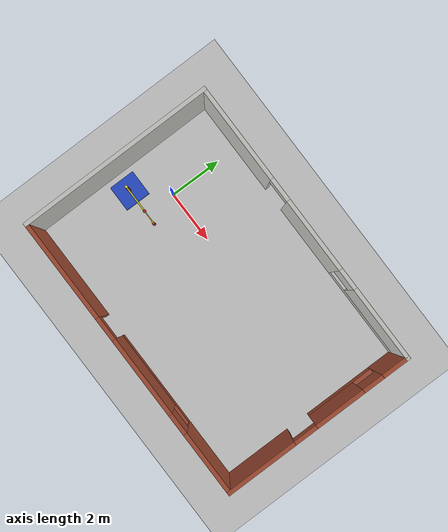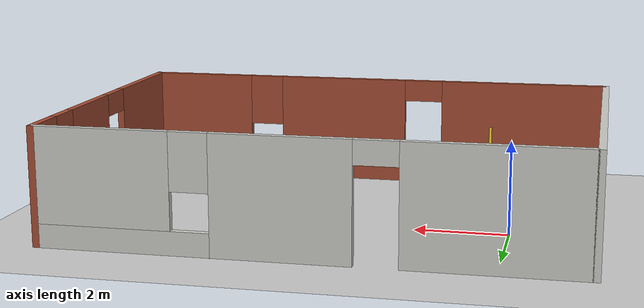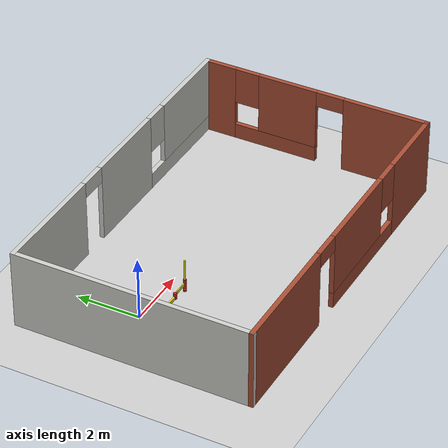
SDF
<sdf version="1.7">
 <world name="default">
  <light name="sun" type="directional">
   <pose>0 0 10 0 -0 0</pose>
   <diffuse>0.8 0.8 0.8 1</diffuse>
   <specular>0.2 0.2 0.2 1</specular>
   <attenuation>
    <range>1000</range>
    <constant>0.9</constant>
    <linear>0.01</linear>
    <quadratic>0.001</quadratic>
   </attenuation>
   <direction>-0.5 0.1 -0.9</direction>
   <spot><inner_angle>0</inner_angle><outer_angle>0</outer_angle><falloff>0</falloff></spot>
  </light>
  <model name="ground_plane">
   <static>1</static>
   <link name="link">
    <collision name="collision">
     <geometry><plane><normal>0 0 1</normal><size>100 100</size></plane></geometry>
     <surface>
      <contact><collide_bitmask>65535</collide_bitmask></contact>
      <friction><ode><mu>100</mu><mu2>50</mu2></ode></friction>
     </surface>
    </collision>
    <visual name="visual">
     <cast_shadows>0</cast_shadows>
     <geometry><plane><normal>0 0 1</normal><size>100 100</size></plane></geometry>
     <material>
      <script><uri>file://media/materials/scripts/gazebo.material</uri><name>Gazebo/Grey</name></script>
     </material>
    </visual>
   </link>
  </model>
  <gravity>0 0 -9.8</gravity>
  <magnetic_field>6e-06 2.3e-05 -4.2e-05</magnetic_field>
  <atmosphere type="adiabatic"/>
  <physics type="ode">
   <max_step_size>0.001</max_step_size>
   <real_time_factor>1</real_time_factor>
   <real_time_update_rate>1000</real_time_update_rate>
  </physics>
  <scene><ambient>0.4 0.4 0.4 1</ambient><background>0.7 0.7 0.7 1</background><shadows>1</shadows></scene>
  <audio><device>default</device></audio>
  <spherical_coordinates>
   <surface_model>EARTH_WGS84</surface_model>
   <latitude_deg>0</latitude_deg>
   <longitude_deg>0</longitude_deg>
   <elevation>0</elevation>
   <heading_deg>0</heading_deg>
  </spherical_coordinates>
  <model name="Side_wall_test">
   <pose>3.70494 -0.850149 0 0 -0 0</pose>
   <link name="Wall_0">
    <collision name="Wall_0_Collision">
     <geometry><box><size>7.5 0.15 2.5</size></box></geometry>
     <pose>0 0 1.25 0 -0 0</pose>
    </collision>
    <visual name="Wall_0_Visual">
     <pose>0 0 1.25 0 -0 0</pose>
     <geometry><box><size>7.5 0.15 2.5</size></box></geometry>
     <material>
      <script><uri>file://media/materials/scripts/gazebo.material</uri><name>Gazebo/CeilingTiled</name></script>
      <ambient>1 1 1 1</ambient>
     </material>
     <meta><layer>0</layer></meta>
    </visual>
    <pose>-5.55 -0 0 0 -0 1.5708</pose>
   </link>
   <link name="Wall_3">
    <pose>0 3.675 0 0 -0 0</pose>
    <visual name="Wall_3_Visual_0">
     <pose>-3.73877 0 1.25 0 -0 0</pose>
     <geometry><box><size>3.77245 0.15 2.5</size></box></geometry>
     <material>
      <script><uri>file://media/materials/scripts/gazebo.material</uri><name>Gazebo/CeilingTiled</name></script>
      <ambient>1 1 1 1</ambient>
     </material>
     <meta><layer>0</layer></meta>
    </visual>
    <collision name="Wall_3_Collision_0">
     <geometry><box><size>3.77245 0.15 2.5</size></box></geometry>
     <pose>-3.73877 0 1.25 0 -0 0</pose>
    </collision>
    <visual name="Wall_3_Visual_1">
     <pose>0.471164 0 1.25 0 -0 0</pose>
     <geometry><box><size>2.84743 0.15 2.5</size></box></geometry>
     <material>
      <script><uri>file://media/materials/scripts/gazebo.material</uri><name>Gazebo/CeilingTiled</name></script>
      <ambient>1 1 1 1</ambient>
     </material>
     <meta><layer>0</layer></meta>
    </visual>
    <collision name="Wall_3_Collision_1">
     <geometry><box><size>2.84743 0.15 2.5</size></box></geometry>
     <pose>0.471164 0 1.25 0 -0 0</pose>
    </collision>
    <visual name="Wall_3_Visual_2">
     <pose>3.75994 0 0.25 0 -0 0</pose>
     <geometry><box><size>3.73012 0.15 0.5</size></box></geometry>
     <material>
      <script><uri>file://media/materials/scripts/gazebo.material</uri><name>Gazebo/CeilingTiled</name></script>
      <ambient>1 1 1 1</ambient>
     </material>
     <meta><layer>0</layer></meta>
    </visual>
    <collision name="Wall_3_Collision_2">
     <geometry><box><size>3.73012 0.15 0.5</size></box></geometry>
     <pose>3.75994 0 0.25 0 -0 0</pose>
    </collision>
    <visual name="Wall_3_Visual_3">
     <pose>4.15994 0 1.5 0 -0 0</pose>
     <geometry><box><size>2.93012 0.15 2</size></box></geometry>
     <material>
      <script><uri>file://media/materials/scripts/gazebo.material</uri><name>Gazebo/CeilingTiled</name></script>
      <ambient>1 1 1 1</ambient>
     </material>
     <meta><layer>0</layer></meta>
    </visual>
    <collision name="Wall_3_Collision_3">
     <geometry><box><size>2.93012 0.15 2</size></box></geometry>
     <pose>4.15994 0 1.5 0 -0 0</pose>
    </collision>
    <visual name="Wall_3_Visual_4">
     <pose>2.29488 0 1.9 0 -0 0</pose>
     <geometry><box><size>0.8 0.15 1.2</size></box></geometry>
     <material>
      <script><uri>file://media/materials/scripts/gazebo.material</uri><name>Gazebo/CeilingTiled</name></script>
      <ambient>1 1 1 1</ambient>
     </material>
     <meta><layer>0</layer></meta>
    </visual>
    <collision name="Wall_3_Collision_4">
     <geometry><box><size>0.8 0.15 1.2</size></box></geometry>
     <pose>2.29488 0 1.9 0 -0 0</pose>
    </collision>
    <visual name="Wall_3_Visual_5">
     <pose>-1.40255 0 2.25 0 -0 0</pose>
     <geometry><box><size>0.9 0.15 0.5</size></box></geometry>
     <material>
      <script><uri>file://media/materials/scripts/gazebo.material</uri><name>Gazebo/CeilingTiled</name></script>
      <ambient>1 1 1 1</ambient>
     </material>
     <meta><layer>0</layer></meta>
    </visual>
    <collision name="Wall_3_Collision_5">
     <geometry><box><size>0.9 0.15 0.5</size></box></geometry>
     <pose>-1.40255 0 2.25 0 -0 0</pose>
    </collision>
   </link>
   <link name="Wall_4">
    <pose>5.55 -0 0 0 -0 -1.5708</pose>
    <visual name="Wall_4_Visual_0">
     <pose>-3.20656 0 1.25 0 -0 0</pose>
     <geometry><box><size>1.08689 0.15 2.5</size></box></geometry>
     <material>
      <script><uri>file://media/materials/scripts/gazebo.material</uri><name>Gazebo/Bricks</name></script>
      <ambient>1 1 1 1</ambient>
     </material>
     <meta><layer>0</layer></meta>
    </visual>
    <collision name="Wall_4_Collision_0">
     <geometry><box><size>1.08689 0.15 2.5</size></box></geometry>
     <pose>-3.20656 0 1.25 0 -0 0</pose>
    </collision>
    <visual name="Wall_4_Visual_1">
     <pose>2.36495 0 1.25 0 -0 0</pose>
     <geometry><box><size>2.77009 0.15 2.5</size></box></geometry>
     <material>
      <script><uri>file://media/materials/scripts/gazebo.material</uri><name>Gazebo/Bricks</name></script>
      <ambient>1 1 1 1</ambient>
     </material>
     <meta><layer>0</layer></meta>
    </visual>
    <collision name="Wall_4_Collision_1">
     <geometry><box><size>2.77009 0.15 2.5</size></box></geometry>
     <pose>2.36495 0 1.25 0 -0 0</pose>
    </collision>
    <visual name="Wall_4_Visual_2">
     <pose>-1.2916 0 0.25 0 -0 0</pose>
     <geometry><box><size>2.74302 0.15 0.5</size></box></geometry>
     <material>
      <script><uri>file://media/materials/scripts/gazebo.material</uri><name>Gazebo/Bricks</name></script>
      <ambient>1 1 1 1</ambient>
     </material>
     <meta><layer>0</layer></meta>
    </visual>
    <collision name="Wall_4_Collision_2">
     <geometry><box><size>2.74302 0.15 0.5</size></box></geometry>
     <pose>-1.2916 0 0.25 0 -0 0</pose>
    </collision>
    <visual name="Wall_4_Visual_3">
     <pose>-0.891604 0 1.5 0 -0 0</pose>
     <geometry><box><size>1.94302 0.15 2</size></box></geometry>
     <material>
      <script><uri>file://media/materials/scripts/gazebo.material</uri><name>Gazebo/Bricks</name></script>
      <ambient>1 1 1 1</ambient>
     </material>
     <meta><layer>0</layer></meta>
    </visual>
    <collision name="Wall_4_Collision_3">
     <geometry><box><size>1.94302 0.15 2</size></box></geometry>
     <pose>-0.891604 0 1.5 0 -0 0</pose>
    </collision>
    <visual name="Wall_4_Visual_4">
     <pose>-2.26311 0 1.9 0 -0 0</pose>
     <geometry><box><size>0.8 0.15 1.2</size></box></geometry>
     <material>
      <script><uri>file://media/materials/scripts/gazebo.material</uri><name>Gazebo/Bricks</name></script>
      <ambient>1 1 1 1</ambient>
     </material>
     <meta><layer>0</layer></meta>
    </visual>
    <collision name="Wall_4_Collision_4">
     <geometry><box><size>0.8 0.15 1.2</size></box></geometry>
     <pose>-2.26311 0 1.9 0 -0 0</pose>
    </collision>
    <visual name="Wall_4_Visual_5">
     <pose>0.529906 0 2.25 0 -0 0</pose>
     <geometry><box><size>0.9 0.15 0.5</size></box></geometry>
     <material>
      <script><uri>file://media/materials/scripts/gazebo.material</uri><name>Gazebo/Bricks</name></script>
      <ambient>1 1 1 1</ambient>
     </material>
     <meta><layer>0</layer></meta>
    </visual>
    <collision name="Wall_4_Collision_5">
     <geometry><box><size>0.9 0.15 0.5</size></box></geometry>
     <pose>0.529906 0 2.25 0 -0 0</pose>
    </collision>
   </link>
   <link name="Wall_5">
    <pose>0 -3.675 0 0 -0 3.14159</pose>
    <visual name="Wall_5_Visual_0">
     <pose>-4.37274 0 1.25 0 -0 0</pose>
     <geometry><box><size>2.50452 0.15 2.5</size></box></geometry>
     <material>
      <script><uri>file://media/materials/scripts/gazebo.material</uri><name>Gazebo/Bricks</name></script>
      <ambient>1 1 1 1</ambient>
     </material>
     <meta><layer>0</layer></meta>
    </visual>
    <collision name="Wall_5_Collision_0">
     <geometry><box><size>2.50452 0.15 2.5</size></box></geometry>
     <pose>-4.37274 0 1.25 0 -0 0</pose>
    </collision>
    <visual name="Wall_5_Visual_1">
     <pose>3.64567 0 1.25 0 -0 0</pose>
     <geometry><box><size>3.95865 0.15 2.5</size></box></geometry>
     <material>
      <script><uri>file://media/materials/scripts/gazebo.material</uri><name>Gazebo/Bricks</name></script>
      <ambient>1 1 1 1</ambient>
     </material>
     <meta><layer>0</layer></meta>
    </visual>
    <collision name="Wall_5_Collision_1">
     <geometry><box><size>3.95865 0.15 2.5</size></box></geometry>
     <pose>3.64567 0 1.25 0 -0 0</pose>
    </collision>
    <visual name="Wall_5_Visual_2">
     <pose>-1.17707 0 0.25 0 -0 0</pose>
     <geometry><box><size>3.88683 0.15 0.5</size></box></geometry>
     <material>
      <script><uri>file://media/materials/scripts/gazebo.material</uri><name>Gazebo/Bricks</name></script>
      <ambient>1 1 1 1</ambient>
     </material>
     <meta><layer>0</layer></meta>
    </visual>
    <collision name="Wall_5_Collision_2">
     <geometry><box><size>3.88683 0.15 0.5</size></box></geometry>
     <pose>-1.17707 0 0.25 0 -0 0</pose>
    </collision>
    <visual name="Wall_5_Visual_3">
     <pose>-0.777066 0 1.5 0 -0 0</pose>
     <geometry><box><size>3.08683 0.15 2</size></box></geometry>
     <material>
      <script><uri>file://media/materials/scripts/gazebo.material</uri><name>Gazebo/Bricks</name></script>
      <ambient>1 1 1 1</ambient>
     </material>
     <meta><layer>0</layer></meta>
    </visual>
    <collision name="Wall_5_Collision_3">
     <geometry><box><size>3.08683 0.15 2</size></box></geometry>
     <pose>-0.777066 0 1.5 0 -0 0</pose>
    </collision>
    <visual name="Wall_5_Visual_4">
     <pose>-2.72048 0 1.9 0 -0 0</pose>
     <geometry><box><size>0.8 0.15 1.2</size></box></geometry>
     <material>
      <script><uri>file://media/materials/scripts/gazebo.material</uri><name>Gazebo/Bricks</name></script>
      <ambient>1 1 1 1</ambient>
     </material>
     <meta><layer>0</layer></meta>
    </visual>
    <collision name="Wall_5_Collision_4">
     <geometry><box><size>0.8 0.15 1.2</size></box></geometry>
     <pose>-2.72048 0 1.9 0 -0 0</pose>
    </collision>
    <visual name="Wall_5_Visual_5">
     <pose>1.21635 0 2.25 0 -0 0</pose>
     <geometry><box><size>0.9 0.15 0.5</size></box></geometry>
     <material>
      <script><uri>file://media/materials/scripts/gazebo.material</uri><name>Gazebo/Bricks</name></script>
      <ambient>1 1 1 1</ambient>
     </material>
     <meta><layer>0</layer></meta>
    </visual>
    <collision name="Wall_5_Collision_5">
     <geometry><box><size>0.9 0.15 0.5</size></box></geometry>
     <pose>1.21635 0 2.25 0 -0 0</pose>
    </collision>
   </link>
   <static>1</static>
  </model>
  <model name="simple_arm">
   <link name="arm_base">
    <inertial>
     <pose>0 0 0.00099 0 -0 0</pose>
     <inertia><ixx>1.11</ixx><ixy>0</ixy><ixz>0</ixz><iyy>100.11</iyy><iyz>0</iyz><izz>1.01</izz></inertia>
     <mass>101</mass>
    </inertial>
    <collision name="arm_base_geom">
     <pose>0 0 0.05 0 -0 0</pose>
     <geometry><box><size>1 1 0.1</size></box></geometry>
    </collision>
    <visual name="arm_base_geom_visual">
     <pose>0 0 0.05 0 -0 0</pose>
     <geometry><box><size>1 1 0.1</size></box></geometry>
     <material>
      <script><uri>file://media/materials/scripts/gazebo.material</uri><name>Gazebo/Blue</name></script>
     </material>
    </visual>
    <collision name="arm_base_geom_arm_trunk">
     <pose>0 0 0.6 0 -0 0</pose>
     <geometry><cylinder><radius>0.05</radius><length>1</length></cylinder></geometry>
    </collision>
    <visual name="arm_base_geom_arm_trunk_visual">
     <pose>0 0 0.6 0 -0 0</pose>
     <geometry><cylinder><radius>0.05</radius><length>1</length></cylinder></geometry>
     <material>
      <script><uri>file://media/materials/scripts/gazebo.material</uri><name>Gazebo/Red</name></script>
     </material>
    </visual>
   </link>
   <link name="arm_shoulder_pan">
    <pose>0 0 1.1 0 -0 0</pose>
    <inertial>
     <pose>0.045455 0 0 0 -0 0</pose>
     <inertia><ixx>0.011</ixx><ixy>0</ixy><ixz>0</ixz><iyy>0.0225</iyy><iyz>0</iyz><izz>0.0135</izz></inertia>
     <mass>1.1</mass>
    </inertial>
    <collision name="arm_shoulder_pan_geom">
     <pose>0 0 0.05 0 -0 0</pose>
     <geometry><cylinder><radius>0.05</radius><length>0.1</length></cylinder></geometry>
    </collision>
    <visual name="arm_shoulder_pan_geom_visual">
     <pose>0 0 0.05 0 -0 0</pose>
     <geometry><cylinder><radius>0.05</radius><length>0.1</length></cylinder></geometry>
     <material>
      <script><uri>file://media/materials/scripts/gazebo.material</uri><name>Gazebo/Yellow</name></script>
     </material>
    </visual>
    <collision name="arm_shoulder_pan_geom_arm_shoulder">
     <pose>0.55 0 0.05 0 -0 0</pose>
     <geometry><box><size>1 0.05 0.1</size></box></geometry>
    </collision>
    <visual name="arm_shoulder_pan_geom_arm_shoulder_visual">
     <pose>0.55 0 0.05 0 -0 0</pose>
     <geometry><box><size>1 0.05 0.1</size></box></geometry>
     <material>
      <script><uri>file://media/materials/scripts/gazebo.material</uri><name>Gazebo/Yellow</name></script>
     </material>
    </visual>
   </link>
   <link name="arm_elbow_pan">
    <pose>1.05 0 1.1 0 -0 0</pose>
    <inertial>
     <pose>0.0875 0 0.083333 0 -0 0</pose>
     <inertia>
      <ixx>0.031</ixx>
      <ixy>0</ixy>
      <ixz>0.005</ixz>
      <iyy>0.07275</iyy>
      <iyz>0</iyz>
      <izz>0.04475</izz>
     </inertia>
     <mass>1.2</mass>
    </inertial>
    <collision name="arm_elbow_pan_geom">
     <pose>0 0 0.1 0 -0 0</pose>
     <geometry><cylinder><radius>0.05</radius><length>0.2</length></cylinder></geometry>
    </collision>
    <visual name="arm_elbow_pan_geom_visual">
     <pose>0 0 0.1 0 -0 0</pose>
     <geometry><cylinder><radius>0.05</radius><length>0.2</length></cylinder></geometry>
     <material>
      <script><uri>file://media/materials/scripts/gazebo.material</uri><name>Gazebo/Red</name></script>
     </material>
    </visual>
    <collision name="arm_elbow_pan_geom_arm_elbow">
     <pose>0.3 0 0.15 0 -0 0</pose>
     <geometry><box><size>0.5 0.03 0.1</size></box></geometry>
    </collision>
    <visual name="arm_elbow_pan_geom_arm_elbow_visual">
     <pose>0.3 0 0.15 0 -0 0</pose>
     <geometry><box><size>0.5 0.03 0.1</size></box></geometry>
     <material>
      <script><uri>file://media/materials/scripts/gazebo.material</uri><name>Gazebo/Yellow</name></script>
     </material>
    </visual>
    <collision name="arm_elbow_pan_geom_arm_wrist">
     <pose>0.55 0 0.15 0 -0 0</pose>
     <geometry><cylinder><radius>0.05</radius><length>0.3</length></cylinder></geometry>
    </collision>
    <visual name="arm_elbow_pan_geom_arm_wrist_visual">
     <pose>0.55 0 0.15 0 -0 0</pose>
     <geometry><cylinder><radius>0.05</radius><length>0.3</length></cylinder></geometry>
     <material>
      <script><uri>file://media/materials/scripts/gazebo.material</uri><name>Gazebo/Red</name></script>
     </material>
    </visual>
   </link>
   <link name="arm_wrist_lift">
    <pose>1.6 0 1.05 0 -0 0</pose>
    <inertial>
     <inertia><ixx>0.01</ixx><ixy>0</ixy><ixz>0</ixz><iyy>0.01</iyy><iyz>0</iyz><izz>0.001</izz></inertia>
     <mass>0.1</mass>
    </inertial>
    <collision name="arm_wrist_lift_geom">
     <pose>0 0 0.5 0 -0 0</pose>
     <geometry><cylinder><radius>0.03</radius><length>1</length></cylinder></geometry>
    </collision>
    <visual name="arm_wrist_lift_geom_visual">
     <pose>0 0 0.5 0 -0 0</pose>
     <geometry><cylinder><radius>0.03</radius><length>1</length></cylinder></geometry>
     <material>
      <script><uri>file://media/materials/scripts/gazebo.material</uri><name>Gazebo/Yellow</name></script>
     </material>
    </visual>
   </link>
   <link name="arm_wrist_roll">
    <pose>1.6 0 1 0 -0 0</pose>
    <inertial>
     <inertia><ixx>0.01</ixx><ixy>0</ixy><ixz>0</ixz><iyy>0.01</iyy><iyz>0</iyz><izz>0.001</izz></inertia>
     <mass>0.1</mass>
    </inertial>
    <collision name="arm_wrist_roll_geom">
     <pose>0 0 0.025 0 -0 0</pose>
     <geometry><cylinder><radius>0.05</radius><length>0.05</length></cylinder></geometry>
    </collision>
    <visual name="arm_wrist_roll_geom_visual">
     <pose>0 0 0.025 0 -0 0</pose>
     <geometry><cylinder><radius>0.05</radius><length>0.05</length></cylinder></geometry>
     <material>
      <script><uri>file://media/materials/scripts/gazebo.material</uri><name>Gazebo/Red</name></script>
     </material>
    </visual>
   </link>
   <joint name="arm_shoulder_pan_joint" type="revolute">
    <parent>arm_base</parent>
    <child>arm_shoulder_pan</child>
    <axis>
     <dynamics>
      <damping>1</damping>
      <friction>0</friction>
      <spring_reference>0</spring_reference>
      <spring_stiffness>0</spring_stiffness>
     </dynamics>
     <xyz expressed_in="__model__">0 0 1</xyz>
     <limit><lower>-1e+16</lower><upper>1e+16</upper></limit>
    </axis>
   </joint>
   <joint name="arm_elbow_pan_joint" type="revolute">
    <parent>arm_shoulder_pan</parent>
    <child>arm_elbow_pan</child>
    <axis>
     <dynamics>
      <damping>1</damping>
      <friction>0</friction>
      <spring_reference>0</spring_reference>
      <spring_stiffness>0</spring_stiffness>
     </dynamics>
     <xyz expressed_in="__model__">0 0 1</xyz>
     <limit><lower>-1e+16</lower><upper>1e+16</upper></limit>
    </axis>
   </joint>
   <joint name="arm_wrist_lift_joint" type="prismatic">
    <parent>arm_elbow_pan</parent>
    <child>arm_wrist_lift</child>
    <axis>
     <dynamics>
      <damping>1</damping>
      <friction>0</friction>
      <spring_reference>0</spring_reference>
      <spring_stiffness>0</spring_stiffness>
     </dynamics>
     <limit><lower>-0.8</lower><upper>0.1</upper></limit>
     <xyz expressed_in="__model__">0 0 1</xyz>
    </axis>
   </joint>
   <joint name="arm_wrist_roll_joint" type="revolute">
    <parent>arm_wrist_lift</parent>
    <child>arm_wrist_roll</child>
    <axis>
     <dynamics>
      <damping>1</damping>
      <friction>0</friction>
      <spring_reference>0</spring_reference>
      <spring_stiffness>0</spring_stiffness>
     </dynamics>
     <limit><lower>-2.99999</lower><upper>2.99999</upper></limit>
     <xyz expressed_in="__model__">0 0 1</xyz>
    </axis>
   </joint>
   <pose>-1.05474 -1.16855 -0 0 0 -0.004285</pose>
  </model>
 </world>
</sdf>
